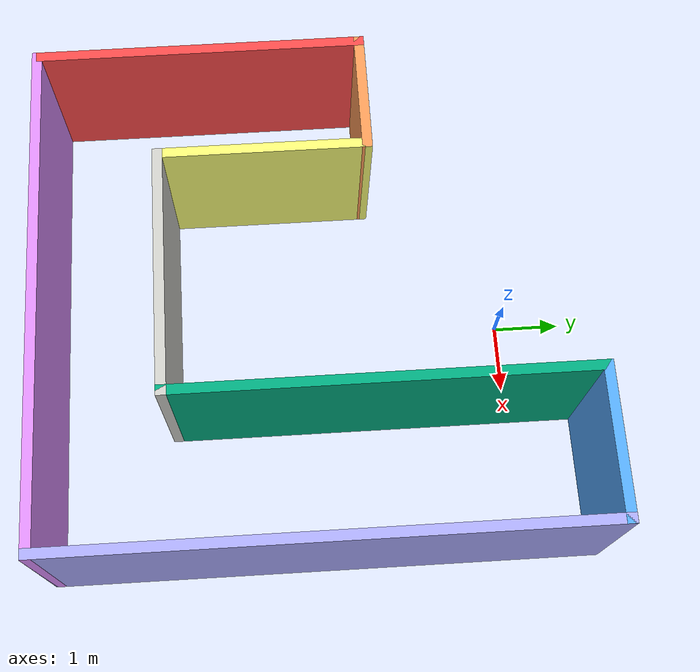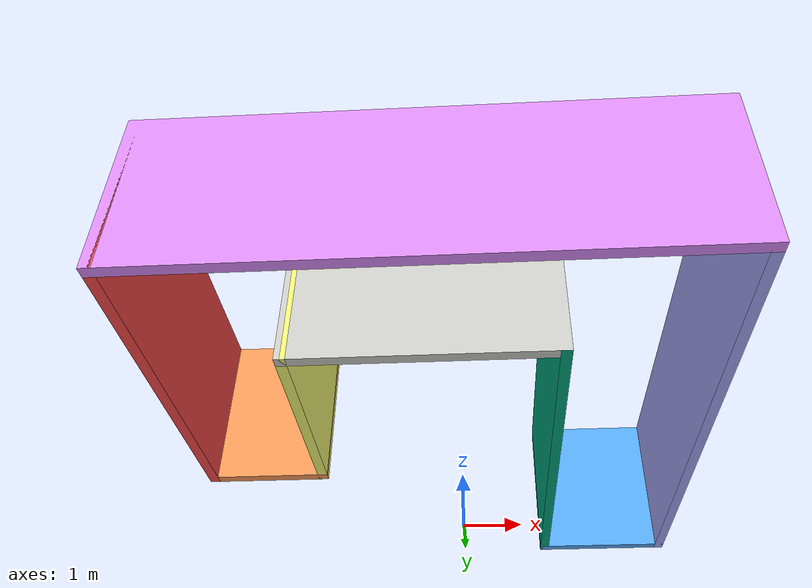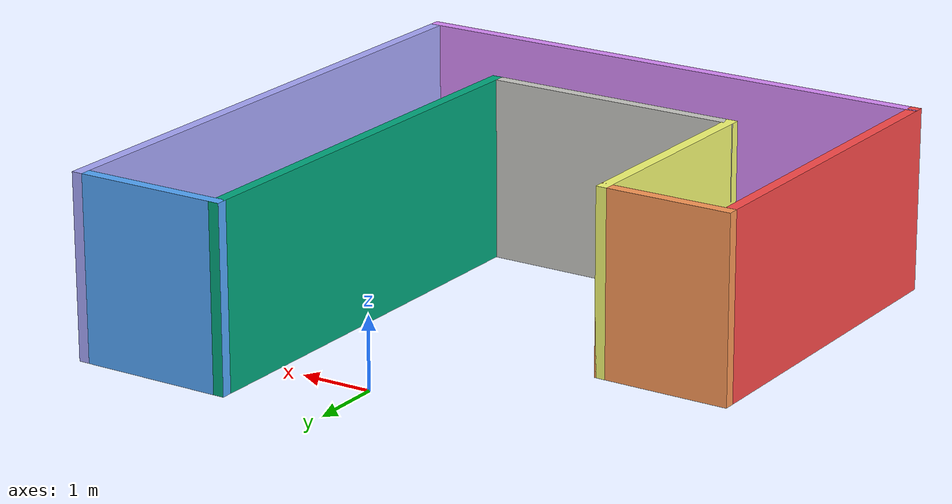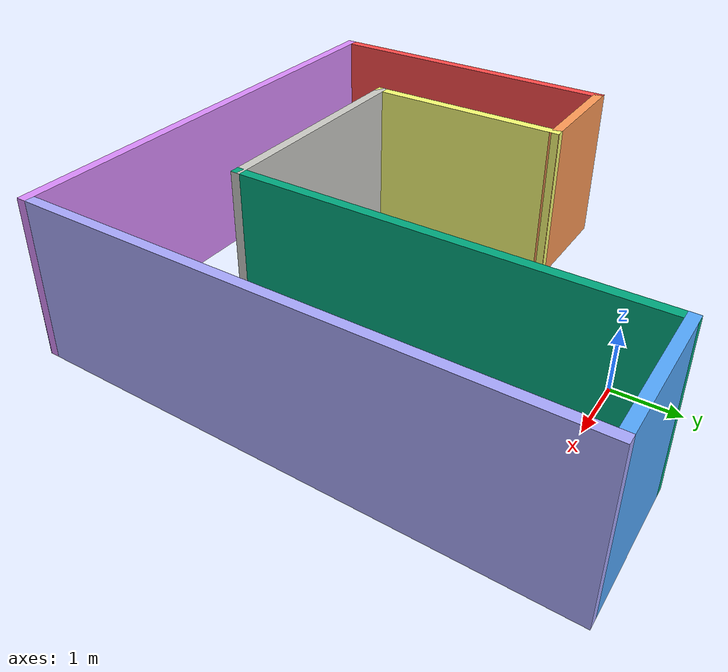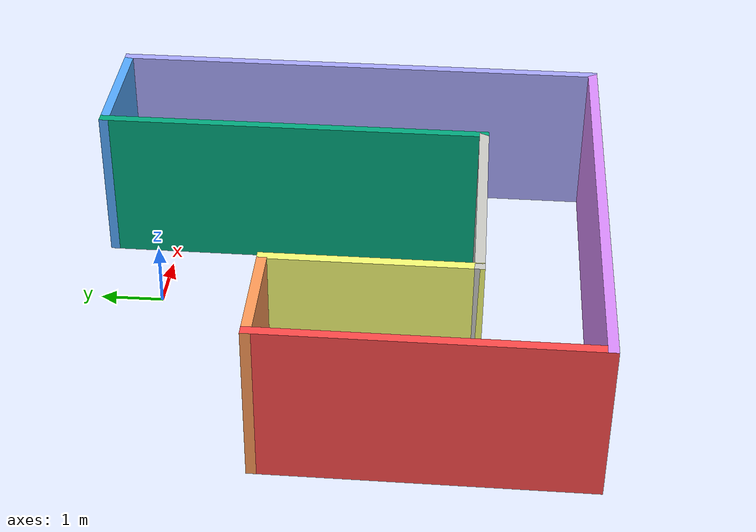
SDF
<?xml version='1.0'?>
<sdf version='1.6'>
  <model name='building'>
    <pose frame=''>-0.155 -2.8818 0 0 -0 0</pose>
    <link name='Wall_0'>
      <collision name='Wall_0_Collision'>
        <geometry>
          <box>
            <size>5 0.15 2.5</size>
          </box>
        </geometry>
        <pose frame=''>0 0 1.25 0 -0 0</pose>
      </collision>
      <visual name='Wall_0_Visual'>
        <pose frame=''>0 0 1.25 0 -0 0</pose>
        <geometry>
          <box>
            <size>5 0.15 2.5</size>
          </box>
        </geometry>
        <material>
          <script>
            <uri>file://media/materials/scripts/gazebo.material</uri>
            <name>Gazebo/Grey</name>
          </script>
          <ambient>1 0.290196 0.290196 1</ambient>
        </material>
        <meta>
          <layer>0</layer>
        </meta>
      </visual>
      <pose frame=''>-3.715 -1.5132 0 0 0 -1.5708</pose>
    </link>
    <link name='Wall_1'>
      <collision name='Wall_1_Collision'>
        <geometry>
          <box>
            <size>7.57999 0.15 2.5</size>
          </box>
        </geometry>
        <pose frame=''>0 0 1.25 0 -0 0</pose>
      </collision>
      <visual name='Wall_1_Visual'>
        <pose frame=''>0 0 1.25 0 -0 0</pose>
        <geometry>
          <box>
            <size>7.57999 0.15 2.5</size>
          </box>
        </geometry>
        <material>
          <script>
            <uri>file://media/materials/scripts/gazebo.material</uri>
            <name>Gazebo/Grey</name>
          </script>
          <ambient>0.866667 0.556863 1 1</ambient>
        </material>
        <meta>
          <layer>0</layer>
        </meta>
      </visual>
      <pose frame=''>0 -3.9382 0 0 -0 0</pose>
    </link>
    <link name='Wall_2'>
      <collision name='Wall_2_Collision'>
        <geometry>
          <box>
            <size>8.02639 0.15 2.5</size>
          </box>
        </geometry>
        <pose frame=''>0 0 1.25 0 -0 0</pose>
      </collision>
      <visual name='Wall_2_Visual'>
        <pose frame=''>0 0 1.25 0 -0 0</pose>
        <geometry>
          <box>
            <size>8.02639 0.15 2.5</size>
          </box>
        </geometry>
        <material>
          <script>
            <uri>file://media/materials/scripts/gazebo.material</uri>
            <name>Gazebo/Grey</name>
          </script>
          <ambient>0.666667 0.666667 1 1</ambient>
        </material>
        <meta>
          <layer>0</layer>
        </meta>
      </visual>
      <pose frame=''>3.7149 0 0 0 -0 1.57082</pose>
    </link>
    <link name='Wall_4'>
      <collision name='Wall_4_Collision'>
        <geometry>
          <box>
            <size>2.25 0.15 2.5</size>
          </box>
        </geometry>
        <pose frame=''>0 0 1.25 0 -0 0</pose>
      </collision>
      <visual name='Wall_4_Visual'>
        <pose frame=''>0 0 1.25 0 -0 0</pose>
        <geometry>
          <box>
            <size>2.25 0.15 2.5</size>
          </box>
        </geometry>
        <material>
          <script>
            <uri>file://media/materials/scripts/gazebo.material</uri>
            <name>Gazebo/Grey</name>
          </script>
          <ambient>0.333333 0.666667 1 1</ambient>
        </material>
        <meta>
          <layer>0</layer>
        </meta>
      </visual>
      <pose frame=''>2.6648 3.93819 0 0 -0 3.14159</pose>
    </link>
    <link name='Wall_5'>
      <collision name='Wall_5_Collision'>
        <geometry>
          <box>
            <size>6.25 0.15 2.5</size>
          </box>
        </geometry>
        <pose frame=''>0 0 1.25 0 -0 0</pose>
      </collision>
      <visual name='Wall_5_Visual'>
        <pose frame=''>0 0 1.25 0 -0 0</pose>
        <geometry>
          <box>
            <size>6.25 0.15 2.5</size>
          </box>
        </geometry>
        <material>
          <script>
            <uri>file://media/materials/scripts/gazebo.material</uri>
            <name>Gazebo/Grey</name>
          </script>
          <ambient>0 0.666667 0.498039 1</ambient>
        </material>
        <meta>
          <layer>0</layer>
        </meta>
      </visual>
      <pose frame=''>1.6148 0.888195 0 0 0 -1.5708</pose>
    </link>
    <link name='Wall_6'>
      <collision name='Wall_6_Collision'>
        <geometry>
          <box>
            <size>3.75 0.15 2.5</size>
          </box>
        </geometry>
        <pose frame=''>0 0 1.25 0 -0 0</pose>
      </collision>
      <visual name='Wall_6_Visual'>
        <pose frame=''>0 0 1.25 0 -0 0</pose>
        <geometry>
          <box>
            <size>3.75 0.15 2.5</size>
          </box>
        </geometry>
        <material>
          <script>
            <uri>file://media/materials/scripts/gazebo.material</uri>
            <name>Gazebo/CeilingTiled</name>
          </script>
          <ambient>1 1 1 1</ambient>
        </material>
        <meta>
          <layer>0</layer>
        </meta>
      </visual>
      <pose frame=''>-0.1852 -2.16181 0 0 -0 3.14159</pose>
    </link>
    <link name='Wall_7'>
      <collision name='Wall_7_Collision'>
        <geometry>
          <box>
            <size>3.22361 0.15 2.5</size>
          </box>
        </geometry>
        <pose frame=''>0 0 1.25 0 -0 0</pose>
      </collision>
      <visual name='Wall_7_Visual'>
        <pose frame=''>0 0 1.25 0 -0 0</pose>
        <geometry>
          <box>
            <size>3.22361 0.15 2.5</size>
          </box>
        </geometry>
        <material>
          <script>
            <uri>file://media/materials/scripts/gazebo.material</uri>
            <name>Gazebo/Grey</name>
          </script>
          <ambient>0.976471 1 0.458824 1</ambient>
        </material>
        <meta>
          <layer>0</layer>
        </meta>
      </visual>
      <pose frame=''>-1.9851 -0.625 0 0 -0 1.57073</pose>
    </link>
    <link name='Wall_8'>
      <collision name='Wall_8_Collision'>
        <geometry>
          <box>
            <size>1.88 0.15 2.5</size>
          </box>
        </geometry>
        <pose frame=''>0 0 1.25 0 -0 0</pose>
      </collision>
      <visual name='Wall_8_Visual'>
        <pose frame=''>0 0 1.25 0 -0 0</pose>
        <geometry>
          <box>
            <size>1.88 0.15 2.5</size>
          </box>
        </geometry>
        <material>
          <script>
            <uri>file://media/materials/scripts/gazebo.material</uri>
            <name>Gazebo/Grey</name>
          </script>
          <ambient>1 0.607843 0.345098 1</ambient>
        </material>
        <meta>
          <layer>0</layer>
        </meta>
      </visual>
      <pose frame=''>-2.85 0.911804 0 0 -0 3.14159</pose>
    </link>
    <static>1</static>
  </model>
</sdf>
